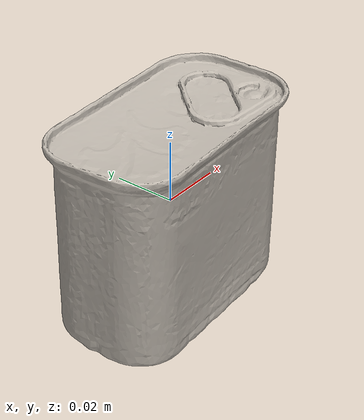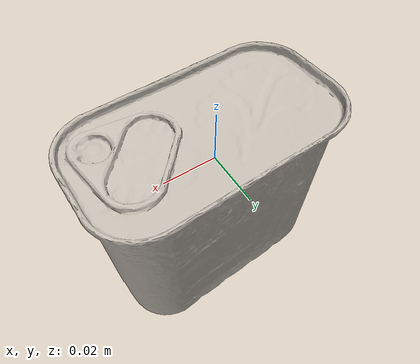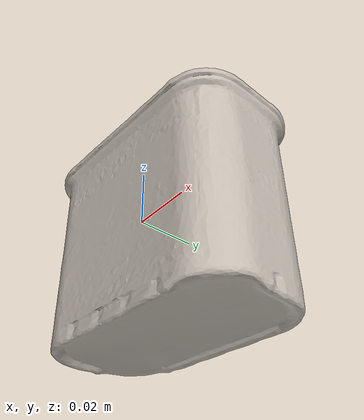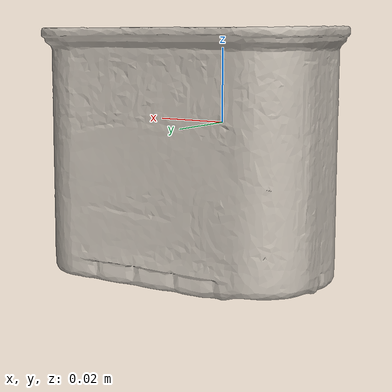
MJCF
<mujoco model="bread">
  <asset>
    <mesh file="nontextured.stl" name="obj_mesh" scale="0.8 0.8 0.8"/>
    <texture file="../../../../../textures/bread.png" type="2d" name="tex-bread" />
    <material name="bread" reflectance="0.7" texrepeat="15 15" texture="tex-bread" texuniform="true"/>
  </asset>
  <worldbody>
    <body>
      <body name="collision">
        <geom pos="0.0327845 0.0265525 -0.0385835" mesh="obj_mesh" type="mesh" solimp="0.998 0.998 0.001" solref="0.001 1" density="50" friction="0.95 0.3 0.1"  material="bread" group="1" condim="4"/>
      </body>
      <body name="visual">
        <geom pos="0.0327845 0.0265525 -0.0385835" mesh="obj_mesh" type="mesh" material="bread"  conaffinity="0" contype="0"  group="0" mass="0.0001"/>
        <geom pos="0.0327845 0.0265525 -0.0385835" mesh="obj_mesh" type="mesh" material="bread"  conaffinity="0" contype="0"  group="1" mass="0.0001"/>
      </body>
      <site rgba="0 0 0 0" size="0.005" pos="0 0 -0.041771499999999996" name="bottom_site"/>
      <site rgba="0 0 0 0" size="0.005" pos="0 0 0.041771499999999996" name="top_site"/>
      <site rgba="0 0 0 0" size="0.005" pos="0.0510425 0.030051500000000002 0.041771499999999996" name="horizontal_radius_site"/>
    </body>
  </worldbody>
</mujoco>
